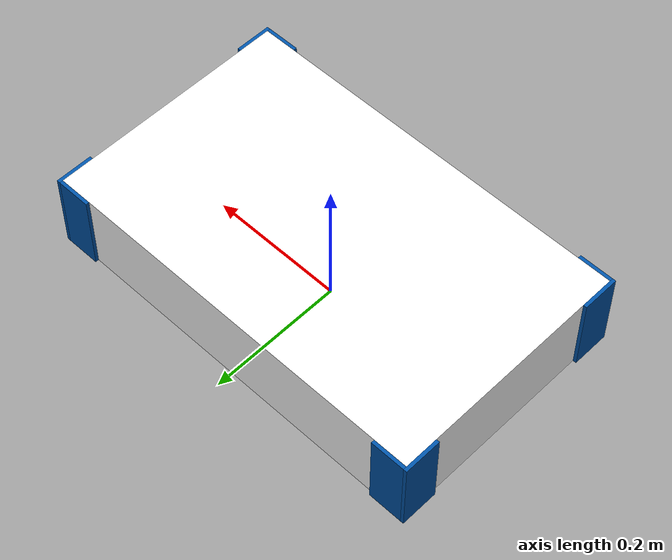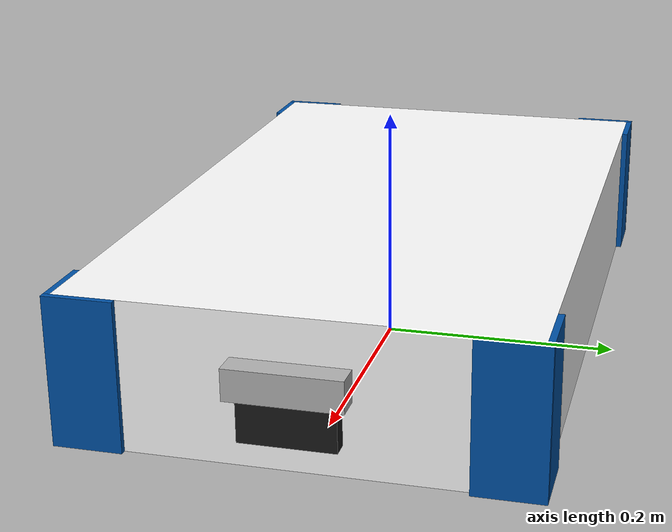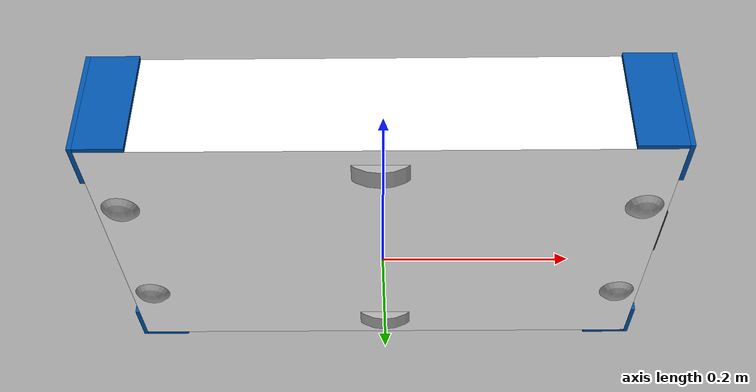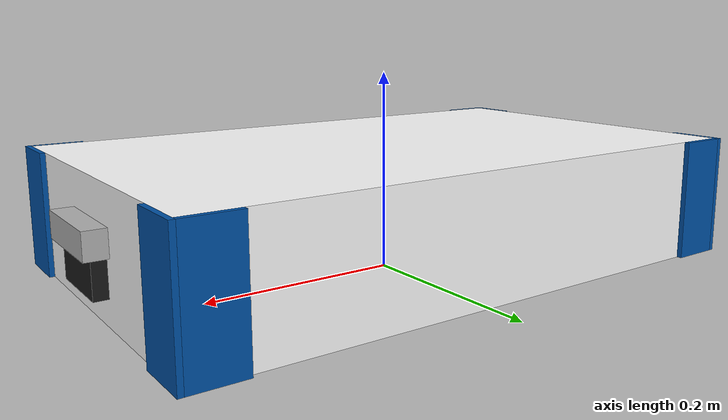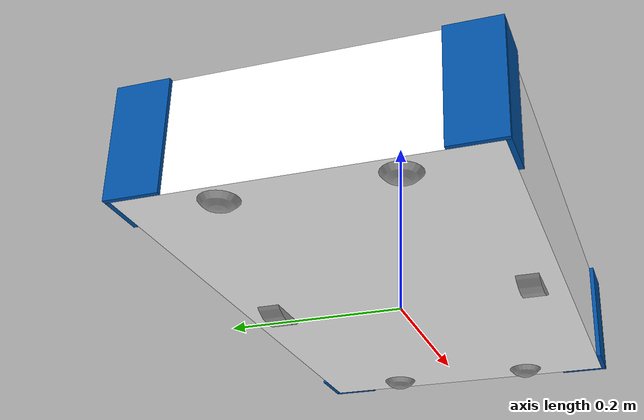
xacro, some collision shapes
<?xml version="1.0"?>
<robot xmlns:xacro="http://www.ros.org/wiki/xacro" name="ad_r1m_realsense">
    <xacro:arg name="robot_namespace" default="" />
    <xacro:property name="chassis_length" value="0.585"/>

    <!-- Build prefix based on namespace -->
    <xacro:property name="robot_namespace" value="$(arg robot_namespace)" />
    <xacro:property name="prefix" value="${ robot_namespace + '/' if robot_namespace else '' }" />

    <!-- Instantiate sim robot model (includes ad_r1m_base + gazebo_ros2_control) -->
    <xacro:include filename="$(find ad_r1m_gazebo)/urdf/ad_r1m_sim.urdf.xacro" />

    <!-- Add realsense camera -->
    <xacro:include filename="$(find ad_r1m_perception_cuvslam)/urdf/_d435i.urdf.xacro"/>
    <xacro:sensor_d435i parent="${prefix}chassis" name="camera">
        <origin xyz="${chassis_length / 2} 0 0" rpy="0 0 0"/>
    </xacro:sensor_d435i>
</robot>

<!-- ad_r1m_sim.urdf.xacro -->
<robot name="ad_r1m_sim" xmlns:xacro="http://www.ros.org/wiki/xacro">
    <xacro:arg name="robot_namespace" default="" />

    <!-- Build prefix based on namespace -->
    <xacro:property name="robot_namespace" value="$(arg robot_namespace)" />
    <xacro:property name="prefix" value="" />
    <xacro:if value="${robot_namespace != ''}">
        <xacro:property name="prefix" value="${robot_namespace}/" />
    </xacro:if>

    <!-- Instantiate base robot model -->
    <xacro:include filename="$(find ad_r1m_description)/urdf/ad_r1m_base.urdf.xacro" />
    <xacro:ad_r1m_base prefix="${prefix}" use_sim="true" />

    <ros2_control name="GZSimSystem" type="system">
        <hardware>
            <plugin>gz_ros2_control/GazeboSimSystem</plugin>
        </hardware>
        <joint name="left_wheel_joint">
            <command_interface name="velocity">
                <param name="min">-18</param>
                <param name="max">18</param>
            </command_interface>
            <state_interface name="velocity"/>
            <state_interface name="position"/>
        </joint>
        <joint name="right_wheel_joint">
            <command_interface name="velocity">
                <param name="min">-18</param>
                <param name="max">18</param>
            </command_interface>
            <state_interface name="velocity"/>
            <state_interface name="position"/>
        </joint>
    </ros2_control>

    <gazebo>
        <plugin filename="gz_ros2_control-system" name="gz_ros2_control::GazeboSimROS2ControlPlugin">
            <parameters>$(find ad_r1m_control)/config/controllers.yaml</parameters>
            <parameters>$(find ad_r1m_gazebo)/config/gaz_ros2_ctl_use_sim.yaml</parameters>
            <robot_param>robot_description</robot_param>
            <robot_param_node>robot_state_publisher</robot_param_node>
            <ros>
                <namespace>$(arg robot_namespace)</namespace>
            </ros>
        </plugin>
    </gazebo>
</robot>

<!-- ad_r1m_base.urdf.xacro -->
<robot xmlns:xacro="http://www.ros.org/wiki/xacro">

<xacro:include filename="_inertial_macros.xacro" />
<xacro:include filename="_lidar.xacro" />
<xacro:include filename="_tof_adtf3175d.xacro" />
<xacro:include filename="_imu_adis16470.xacro" />

<xacro:macro name="ad_r1m_base" params="prefix use_sim:=false">

    <xacro:property name="chassis_length" value="0.59"/>
    <xacro:property name="chassis_width" value="0.36"/>
    <xacro:property name="chassis_height" value="0.12"/>
    <xacro:property name="base_width" value="0.22"/>
    <xacro:property name="wheel_separation" value="0.29"/>
    <xacro:property name="chassis_clearance_ground" value="0.010"/>
    <xacro:property name="chassis_zoff" value="${(chassis_clearance_ground + chassis_height/2)}"/>
    <xacro:property name="chassis_mass" value="1.0"/>

    <xacro:property name="wheel_radius" value="0.05"/>
    <xacro:property name="wheel_width" value="0.025"/>
    <xacro:property name="wheel_mass" value="0.5"/> <!-- SLIP_FIX was 0.05 -->

    <xacro:property name="caster_wheel_radius" value="0.025"/>
    <xacro:property name="caster_wheel_mass" value="0.01"/>
    <xacro:property name="caster_wheel_zoff" value="${caster_wheel_radius}"/>

    <xacro:property name="bumper_thickness" value="0.005"/>
    <xacro:property name="bumper_length" value="0.05"/>
    <xacro:property name="bumper_height" value="${chassis_height}"/>

    <xacro:property name="camera_length" value="0.065"/>
    <xacro:property name="camera_height" value="0.05"/>
    <xacro:property name="camera_offset_above_chassis" value="0.025"/>
    <xacro:property name="camera_overhang" value="0.013"/>

    <material name="white"><color rgba="1.0 1.0 1.0 1.0"/></material>
    <material name="adi_blue"><color rgba="0.0 0.32 0.65 1.0"/></material>
    <material name="gray"><color rgba="0.65 0.65 0.65 1.0"/></material>
    <material name="black"><color rgba="0.1 0.1 0.1 1.0"/></material>

    <!-- BASE LINK -->

    <link name="${prefix}base_link"></link>

    <!-- HARDWARE MODULES -->

    <xacro:imu_adis16470 prefix="${prefix}" parent="${prefix}base_link">
        <origin xyz="0.180 0 ${wheel_radius}" rpy="${pi} 0 ${-pi/2}"/>
    </xacro:imu_adis16470>

    <xacro:tof_adtf3175d prefix="${prefix}" parent="${prefix}base_link" use_sim="${use_sim}">
        <origin xyz="${chassis_length/2 + camera_overhang - camera_length/2} 0 ${chassis_clearance_ground + camera_offset_above_chassis + camera_height/2}" rpy="0 0 0" />
    </xacro:tof_adtf3175d>

    <xacro:lidar prefix="${prefix}" parent="${prefix}base_link">
        <origin xyz="${chassis_length/2 + camera_overhang - camera_length/2} 0 ${chassis_clearance_ground + camera_offset_above_chassis + camera_height/2}" rpy="0 0 0" />
    </xacro:lidar>

    <!-- BASE_FOOTPRINT LINK -->

    <joint name="base_footprint_joint" type="fixed">
        <parent link="${prefix}base_link"/>
        <child link="${prefix}base_footprint"/>
        <origin xyz="0 0 0" rpy="0 0 0"/>
    </joint>

    <link name="${prefix}base_footprint"></link>

    <!-- CHASSIS LINK -->

    <joint name="chassis_joint" type="fixed">
        <parent link="${prefix}base_link"/>
        <child link="${prefix}chassis"/>
        <origin xyz="0 0 ${chassis_zoff}"/>
    </joint>

    <link name="${prefix}chassis">
        <visual>
            <geometry>
                <box size="${chassis_length} ${chassis_width} ${chassis_height}"/>
            </geometry>
            <material name="white"/>
        </visual>
        <collision>
            <geometry>
                <box size="${chassis_length} ${chassis_width} ${chassis_height}"/>
            </geometry>
        </collision>
        <xacro:inertial_box mass="10.0" x="${chassis_length}" y="${chassis_width}" z="${chassis_height}">
            <origin xyz="0 0 0" rpy="0 0 0"/>
        </xacro:inertial_box>
    </link>

    <gazebo reference="${prefix}chassis">
        <material>
            <ambient>1.0 1.0 1.0 1</ambient>
            <diffuse>1.0 1.0 1.0 1</diffuse>
            <specular>1.0 1.0 1.0 1</specular>
        </material>
    </gazebo>

    <!-- CORNER BUMPERS (L-shaped: lateral + front/rear sections) -->
    <xacro:macro name="corner_bumper" params="name x_reflect y_reflect">
        <!-- Lateral section (along Y, on the side) -->
        <joint name="${prefix}${name}_bumper_lat_joint" type="fixed">
            <parent link="${prefix}chassis"/>
            <child link="${prefix}${name}_bumper_lat"/>
	    <origin xyz="${x_reflect*(chassis_length/2 - bumper_length/2)} ${y_reflect*(chassis_width/2 + bumper_thickness/2)} 0" rpy="0 0 0"/>
        </joint>

        <link name="${prefix}${name}_bumper_lat">
            <visual>
                <geometry>
                    <box size="${bumper_length} ${bumper_thickness} ${bumper_height}"/>
                </geometry>
                <material name="adi_blue"/>
            </visual>
        </link>

        <gazebo reference="${prefix}${name}_bumper_lat">
            <material>
                <ambient>0.0 0.0 0.8 1</ambient>
                <diffuse>0.0 0.0 0.8 1</diffuse>
                <specular>0.0 0.0 0.8 1</specular>
            </material>
        </gazebo>

        <!-- Front/rear section (along X, on the front/back) -->
        <joint name="${prefix}${name}_bumper_front_joint" type="fixed">
            <parent link="${prefix}chassis"/>
            <child link="${prefix}${name}_bumper_front"/>
	    <origin xyz="${x_reflect*(chassis_length/2 + bumper_thickness/2)} ${y_reflect*(chassis_width/2 - bumper_length/2 + bumper_thickness/2)} 0" rpy="0 0 0"/>
        </joint>

        <link name="${prefix}${name}_bumper_front">
            <visual>
                <geometry>
                    <box size="${bumper_thickness} ${bumper_length + bumper_thickness} ${bumper_height}"/>
                </geometry>
                <material name="adi_blue"/>
            </visual>
        </link>

        <gazebo reference="${prefix}${name}_bumper_front">
            <material>
                <ambient>0.0 0.0 0.8 1</ambient>
                <diffuse>0.0 0.0 0.8 1</diffuse>
                <specular>0.0 0.0 0.8 1</specular>
            </material>
        </gazebo>
    </xacro:macro>

    <xacro:corner_bumper name="front_left" x_reflect="1" y_reflect="1"/>
    <xacro:corner_bumper name="front_right" x_reflect="1" y_reflect="-1"/>
    <xacro:corner_bumper name="rear_left" x_reflect="-1" y_reflect="1"/>
    <xacro:corner_bumper name="rear_right" x_reflect="-1" y_reflect="-1"/>

    <!-- LEFT WHEEL LINK -->

    <joint name="left_wheel_joint" type="continuous">
        <parent link="${prefix}base_link"/>
        <child link="${prefix}left_wheel"/>
        <origin xyz="0 ${wheel_separation/2} ${wheel_radius}" rpy="-${pi/2} 0 0" />
        <axis xyz="0 0 1"/>
    </joint>

    <link name="${prefix}left_wheel">
        <visual>
            <geometry>
                <cylinder radius="${wheel_radius}" length="${wheel_width}"/>
            </geometry>
            <material name="gray"/>
        </visual>
        <collision>
            <geometry>
                <cylinder radius="${wheel_radius}" length="${wheel_width}"/> <!-- SLIP_FIX was sphere -->
            </geometry>
        </collision>
        <xacro:inertial_cylinder mass="${wheel_mass}" length="${wheel_width}" radius="${wheel_radius}">
            <origin xyz="0 0 0" rpy="0 0 0"/>
        </xacro:inertial_cylinder>
    </link>

    <gazebo reference="${prefix}left_wheel">
        <material>
            <ambient>0.5 0.5 0.5 1</ambient>
            <diffuse>0.5 0.5 0.5 1</diffuse>
            <specular>0.5 0.5 0.5 1</specular>
        </material>
        <collision>
            <surface>
                <friction><ode><mu>1.5</mu><mu2>1.5</mu2></ode></friction>
                <contact><ode><kp>1e6</kp><kd>100</kd><min_depth>0.001</min_depth><max_vel>0.1</max_vel></ode></contact>
            </surface>
        </collision>
    </gazebo>

    <!-- RIGHT WHEEL LINK -->

    <joint name="right_wheel_joint" type="continuous">
        <parent link="${prefix}base_link"/>
        <child link="${prefix}right_wheel"/>
        <origin xyz="0 ${-wheel_separation/2} ${wheel_radius}" rpy="${pi/2} 0 0" />
        <axis xyz="0 0 -1"/>
    </joint>

    <link name="${prefix}right_wheel">
        <visual>
            <geometry>
                <cylinder radius="${wheel_radius}" length="${wheel_width}"/>
            </geometry>
            <material name="gray"/>
        </visual>
        <collision>
            <geometry>
                <cylinder radius="${wheel_radius}" length="${wheel_width}"/> <!-- SLIP_FIX was sphere -->
            </geometry>
        </collision>
        <xacro:inertial_cylinder mass="${wheel_mass}" length="${wheel_width}" radius="${wheel_radius}">
            <origin xyz="0 0 0" rpy="0 0 0"/>
        </xacro:inertial_cylinder>
    </link>

    <gazebo reference="${prefix}right_wheel">
        <material>
            <ambient>0.5 0.5 0.5 1</ambient>
            <diffuse>0.5 0.5 0.5 1</diffuse>
            <specular>0.5 0.5 0.5 1</specular>
        </material>
        <collision>
            <surface>
                <friction><ode><mu>1.5</mu><mu2>1.5</mu2></ode></friction>
                <contact><ode><kp>1e6</kp><kd>100</kd><min_depth>0.001</min_depth><max_vel>0.1</max_vel></ode></contact>
            </surface>
        </collision>
    </gazebo>

    <!-- CASTER WHEEL LINKS -->
    <xacro:macro name="caster_wheel" params="prefix parent x_reflect y_reflect">
        <link name="${prefix}_link">
            <visual>
                <geometry>
                    <sphere radius="${caster_wheel_radius}"/>
                </geometry>
                <material name="gray"/>
            </visual>
            <collision>
                <origin xyz="0 0 0" rpy="0 0 0"/>
                <geometry>
                    <sphere radius="${caster_wheel_radius}"/>
                </geometry>
            </collision>
            <xacro:inertial_sphere mass="${caster_wheel_mass}" radius="${caster_wheel_radius}">
                <origin xyz="0 0 0" rpy="0 0 0"/>
            </xacro:inertial_sphere>
        </link>

        <joint name="${prefix}_joint" type="fixed">
            <parent link="${parent}"/>
            <child link="${prefix}_link"/>
            <origin xyz="${x_reflect*(chassis_length/2-caster_wheel_radius)} ${y_reflect*(base_width/2-caster_wheel_radius)} ${caster_wheel_zoff}" rpy="0 0 0"/>
        </joint>

        <gazebo reference="${prefix}_link">
            <material>
                <ambient>0.5 0.5 0.5 1</ambient>
                <diffuse>0.5 0.5 0.5 1</diffuse>
                <specular>0.5 0.5 0.5 1</specular>
            </material>
            <collision>
                <surface>
                    <friction><ode><mu>0.001</mu><mu2>0.001</mu2></ode></friction>
                    <contact><ode><kp>1e6</kp><kd>100</kd><min_depth>0.001</min_depth><max_vel>0.1</max_vel></ode></contact>
                </surface>
            </collision>
        </gazebo>
    </xacro:macro>

    <xacro:caster_wheel parent="${prefix}base_link" prefix="${prefix}front_left_caster" x_reflect="1" y_reflect="1"/>
    <xacro:caster_wheel parent="${prefix}base_link" prefix="${prefix}front_right_caster" x_reflect="1" y_reflect="-1"/>
    <xacro:caster_wheel parent="${prefix}base_link" prefix="${prefix}rear_left_caster" x_reflect="-1" y_reflect="1"/>
    <xacro:caster_wheel parent="${prefix}base_link" prefix="${prefix}rear_right_caster" x_reflect="-1" y_reflect="-1"/>

</xacro:macro>
</robot>

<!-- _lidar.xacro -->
<robot xmlns:xacro="http://www.ros.org/wiki/xacro" >

<xacro:macro name="lidar" params="prefix parent *origin">

    <joint name="cam1_laser_joint" type="fixed">
        <parent link="${parent}"/>
        <child link="${prefix}cam1_laser"/>
        <xacro:insert_block name="origin" />
    </joint>

    <link name="${prefix}cam1_laser">
        <inertial>
            <origin xyz="0 0 0" rpy="0 0 0"/>
            <mass value="0.125"/>
            <inertia ixx="0.001" ixy="0" ixz="0" iyy="0.001" iyz="0" izz="0.001" />
        </inertial>

        <collision>
            <origin xyz="0 0 0" rpy="0 0 0"/>
            <geometry>
                <box size="0.02 0.065 0.07"/>
            </geometry>
        </collision>

        <visual>
            <origin xyz="0 0 0" rpy="0 0 0"/>
            <geometry>
                <box size="0.02 0.065 0.07"/>
            </geometry>
            <material name="black"/>
        </visual>
    </link>

    <gazebo reference="${prefix}cam1_laser">
        <material>Gazebo/Black</material>

        <sensor name="laser" type="ray">
            <pose> 0 0 0 0 0 0 </pose>
            <visualize>false</visualize>
            <update_rate>10</update_rate>
            <ray>
                <scan>
                    <horizontal>
                        <samples>75</samples>
                        <min_angle>-0.654166</min_angle>
                        <max_angle>0.654166</max_angle>
                    </horizontal>
                </scan>
                <range>
                    <min>0.4</min>
                    <max>5</max>
                </range>
            </ray>
            <plugin name="laser_controller" filename="libgazebo_ros_ray_sensor.so">
                <ros>
                    <remapping>~/out:=/scan</remapping>
                </ros>
                <output_type>sensor_msgs/LaserScan</output_type>
                <frame_name>cam1_laser</frame_name>
            </plugin>
        </sensor>
    </gazebo>

</xacro:macro>
</robot>

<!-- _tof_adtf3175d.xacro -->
<robot xmlns:xacro="http://www.ros.org/wiki/xacro">

<xacro:macro name="tof_adtf3175d" params="prefix parent use_sim:=false *origin">

    <!-- Optical frame rotation differs: real driver flips image internally -->
    <xacro:property name="optical_sign" value="${-1 if use_sim else 1}"/>

    <joint name="cam1_adtf31xx_joint" type="fixed">
        <parent link="${parent}"/>
        <child link="${prefix}cam1_adtf31xx"/>
        <xacro:insert_block name="origin" />
    </joint>

    <link name="${prefix}cam1_adtf31xx">
        <inertial>
            <origin xyz="0 0 0" rpy="0 0 0"/>
            <mass value="0.125"/>
            <inertia ixx="0.001" ixy="0" ixz="0" iyy="0.001" iyz="0" izz="0.001" />
        </inertial>

        <collision>
            <origin xyz="0 0 0" rpy="0 0 0"/>
            <geometry>
                <box size="0.065 0.075 0.05"/>
            </geometry>
        </collision>

        <visual>
            <origin xyz="0 0 0" rpy="0 0 0"/>
            <geometry>
                <box size="0.065 0.075 0.05"/>
            </geometry>
            <material name="black"/>
        </visual>
    </link>

    <joint name="cam1_adtf31xx_optical_joint" type="fixed">
        <parent link="${prefix}cam1_adtf31xx"/>
        <child link="${prefix}cam1_adtf31xx_optical"/>
        <origin xyz="0 0 0" rpy="${optical_sign * pi/2} 0 ${optical_sign * pi/2}"/>
    </joint>
    <link name="${prefix}cam1_adtf31xx_optical"></link>

    <joint name="cam1_scan_joint" type="fixed">
        <parent link="${prefix}cam1_adtf31xx"/>
        <child link="${prefix}cam1_scan"/>
        <origin xyz="0 0 0" rpy="${pi} 0 0"/>
    </joint>
    <link name="${prefix}cam1_scan"></link>

    <gazebo reference="${prefix}cam1_adtf31xx">
        <material>
            <ambient>0.1 0.1 0.1 1</ambient>
            <diffuse>0.1 0.1 0.1 1</diffuse>
            <specular>0.1 0.1 0.1 1</specular>
        </material>

        <!-- 75deg FOV, 512x512, 0.3-5.0m range -->
        <sensor name="cam1_depth" type="rgbd_camera">
            <pose>0 0 0 0 0 0</pose>
            <visualize>true</visualize>
            <update_rate>30</update_rate>
            <topic>cam1</topic>
            <gz_frame_id>${prefix}cam1_adtf31xx</gz_frame_id>
            <camera>
                <horizontal_fov>1.309</horizontal_fov>
                <image>
                    <width>512</width>
                    <height>512</height>
                    <format>R8G8B8</format>
                </image>
                <clip>
                    <near>0.3</near>
                    <far>5.0</far>
                </clip>
                <noise>
                    <type>gaussian</type>
                    <mean>0.0</mean>
                    <stddev>0.005</stddev>
                </noise>
            </camera>
        </sensor>
    </gazebo>

</xacro:macro>
</robot>

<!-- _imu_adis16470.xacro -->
<robot xmlns:xacro="http://www.ros.org/wiki/xacro" >

<xacro:macro name="imu_adis16470" params="prefix parent *origin">

    <joint name="imu_joint" type="fixed">
        <parent link="${parent}"/>
        <child link="${prefix}imu"/>
        <xacro:insert_block name="origin" />
    </joint>

    <link name="${prefix}imu">
        <inertial>
            <origin xyz="0 0 0" rpy="0 0 0"/>
            <mass value="0.001"/>
            <inertia ixx="0.00001" ixy="0" ixz="0" iyy="0.00001" iyz="0" izz="0.00001" />
        </inertial>

        <collision>
            <origin xyz="0 0 0" rpy="0 0 0"/>
            <geometry>
                <box size="0.015 0.01 0.01"/>
            </geometry>
        </collision>

        <visual>
            <origin xyz="0 0 0" rpy="0 0 0"/>
            <geometry>
                <box size="0.015 0.01 0.01"/>
            </geometry>
            <material name="white">
                <color rgba="1 1 1 1"/>
            </material>
        </visual>
    </link>

    <gazebo reference="${prefix}imu">
        <sensor name="imu_sensor" type="imu">
        <always_on>true</always_on>
        <update_rate>100</update_rate>
        <visualize>true</visualize>
        <topic>imu</topic>
        <gz_frame_id>${prefix}imu</gz_frame_id>
        <imu>
            <angular_velocity>
                <x><noise type="gaussian">
                    <mean>0.0</mean>
                    <stddev>2e-4</stddev>
                    <bias_mean>0.0000075</bias_mean>
                    <bias_stddev>0.0000008</bias_stddev>
                </noise></x>
                <y><noise type="gaussian">
                    <mean>0.0</mean>
                    <stddev>2e-4</stddev>
                    <bias_mean>0.0000075</bias_mean>
                    <bias_stddev>0.0000008</bias_stddev>
                </noise></y>
                <z><noise type="gaussian">
                    <mean>0.0</mean>
                    <stddev>2e-4</stddev>
                    <bias_mean>0.0000075</bias_mean>
                    <bias_stddev>0.0000008</bias_stddev>
                </noise></z>
            </angular_velocity>
            <linear_acceleration>
                <x><noise type="gaussian">
                    <mean>0.0</mean>
                    <stddev>1.7e-2</stddev>
                    <bias_mean>0.1</bias_mean>
                    <bias_stddev>0.001</bias_stddev>
                </noise></x>
                <y><noise type="gaussian">
                    <mean>0.0</mean>
                    <stddev>1.7e-2</stddev>
                    <bias_mean>0.1</bias_mean>
                    <bias_stddev>0.001</bias_stddev>
                </noise></y>
                <z><noise type="gaussian">
                    <mean>-9.81</mean>    <!-- Offset by gravitational acceleration -->
                    <stddev>1.7e-2</stddev>
                    <bias_mean>0.0</bias_mean>  <!-- Reduced bias -->
                    <bias_stddev>0.0</bias_stddev>  <!-- Removed bias variation -->
                </noise></z>
            </linear_acceleration>
        </imu>
        </sensor>
    </gazebo>

</xacro:macro>
</robot>

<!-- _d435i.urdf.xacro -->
<robot name="sensor_d435i" xmlns:xacro="http://www.ros.org/wiki/xacro">

  <!-- Includes -->
  <xacro:include filename="$(find ad_r1m_perception_cuvslam)/urdf/_d435.urdf.xacro"/>
  <xacro:include filename="$(find ad_r1m_perception_cuvslam)/urdf/_d435i_imu_modules.urdf.xacro"/>
  <xacro:include filename="$(find ad_r1m_perception_cuvslam)/urdf/_d435i_imu.gazebo.xacro"/>

  <xacro:macro name="sensor_d435i" params="parent *origin name:=camera use_nominal_extrinsics:=true">

    <!-- D435 camera (with RGB, depth, IR sensors) -->
    <xacro:sensor_d435 parent="${parent}" name="${name}">
      <xacro:insert_block name="origin"/>
    </xacro:sensor_d435>

    <!-- IMU frames -->
    <xacro:d435i_imu_modules name="${name}" use_nominal_extrinsics="${use_nominal_extrinsics}"/>

    <!-- IMU Gazebo plugin -->
    <xacro:gazebo_d435i_imu
      camera_name="${name}"
      reference_link="${name}_link"
      accel_frame="${name}_accel_optical_frame"
      gyro_frame="${name}_gyro_optical_frame"/>
  </xacro:macro>
</robot>

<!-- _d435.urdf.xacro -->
<robot name="sensor_d435" xmlns:xacro="http://ros.org/wiki/xacro">
  <!--File includes-->
  <xacro:include filename="$(find ad_r1m_perception_cuvslam)/urdf/_d435.gazebo.xacro"/>

  <xacro:macro name="sensor_d435" params="name:=camera topics_ns:=camera parent *origin use_mesh:=true">
    <xacro:property name="M_PI" value="3.1415926535897931" />

    <!-- The following values are approximate, and the camera node
     publishing TF values with actual calibrated camera extrinsic values -->
    <xacro:property name="d435_cam_depth_to_left_ir_offset" value="0"/>
    <xacro:property name="d435_cam_depth_to_right_ir_offset" value="-0.050"/>
    <xacro:property name="d435_cam_depth_to_color_offset" value="0.015"/>

    <!-- The following values model the aluminum peripherial case for the
  	D435 camera, with the camera joint represented by the actual
  	peripherial camera tripod mount -->
    <xacro:property name="d435_cam_width" value="0.090"/>
    <xacro:property name="d435_cam_height" value="0.025"/>
    <xacro:property name="d435_cam_depth" value="0.02505"/>
    <xacro:property name="d435_cam_mount_from_center_offset" value="0.0149"/>
    <!-- glass cover is 0.1 mm inwards from front aluminium plate -->
    <xacro:property name="d435_glass_to_front" value="0.1e-3"/>
    <!-- see datasheet Revision 007, Fig. 4-4 page 65 -->
    <xacro:property name="d435_zero_depth_to_glass" value="4.2e-3"/>
    <!-- convenience precomputation to avoid clutter-->
    <xacro:property name="d435_mesh_x_offset" value="${d435_cam_mount_from_center_offset-d435_glass_to_front-d435_zero_depth_to_glass}"/>

    <!-- The following offset is relative the the physical D435 camera peripherial
  	camera tripod mount -->
    <xacro:property name="d435_cam_depth_px" value="${d435_cam_mount_from_center_offset}"/>
    <xacro:property name="d435_cam_depth_py" value="0.0175"/>
    <xacro:property name="d435_cam_depth_pz" value="${d435_cam_height/2}"/>

    <material name="${name}_aluminum">
	  <color rgba="0.5 0.5 0.5 1"/>
    </material>

    <!-- camera body, with origin at bottom screw mount -->
    <joint name="${name}_joint" type="fixed">
      <xacro:insert_block name="origin" />
      <parent link="${parent}"/>
      <child link="${name}_bottom_screw_frame" />
    </joint>
    <link name="${name}_bottom_screw_frame"/>

    <joint name="${name}_link_joint" type="fixed">
      <origin xyz="${d435_mesh_x_offset} ${d435_cam_depth_py} ${d435_cam_depth_pz}" rpy="0 0 0"/>
      <parent link="${name}_bottom_screw_frame"/>
      <child link="${name}_link" />
    </joint>

    <link name="${name}_link">
      <visual>
      <xacro:if value="${use_mesh}">
      <origin xyz="${d435_zero_depth_to_glass + d435_glass_to_front} ${-d435_cam_depth_py} 0" rpy="${M_PI/2} 0 ${M_PI/2}"/>
        <geometry>
          <mesh filename="$(find ad_r1m_perception_cuvslam)/meshes/d435.dae" scale="1 1 1"/>
        </geometry>
        </xacro:if>
         <xacro:unless value="${use_mesh}">
          <origin xyz="0 ${-d435_cam_depth_py} 0" rpy="0 0 0"/>
          <geometry>
            <box size="${d435_cam_depth} ${d435_cam_width} ${d435_cam_height}"/>
          </geometry>
          <material name="aluminum"/>
        </xacro:unless>
      </visual>
      <collision>
        <origin xyz="0 ${-d435_cam_depth_py} 0" rpy="0 0 0"/>
        <geometry>
        <box size="${d435_cam_depth} ${d435_cam_width} ${d435_cam_height}"/>
        </geometry>
      </collision>
      <inertial>
        <!-- The following are not reliable values, and should not be used for modeling -->
        <mass value="0.564" />
        <origin xyz="0 0 0" />
        <inertia ixx="0.003881243" ixy="0.0" ixz="0.0" iyy="0.000498940" iyz="0.0" izz="0.003879257" />
      </inertial>
    </link>

    <!-- camera depth joints and links -->
    <joint name="${name}_depth_joint" type="fixed">
      <origin xyz="0 0 0" rpy="0 0 0"/>
      <parent link="${name}_link"/>
      <child link="${name}_depth_frame" />
    </joint>
    <link name="${name}_depth_frame"/>

    <joint name="${name}_depth_optical_joint" type="fixed">
      <origin xyz="0 0 0" rpy="${-M_PI/2} 0 ${-M_PI/2}" />
      <parent link="${name}_depth_frame" />
      <child link="${name}_depth_optical_frame" />
    </joint>
    <link name="${name}_depth_optical_frame"/>

    <!-- camera left IR joints and links -->

    <!-- NEW frames according to real realsense tf tree for the infra1 camera frame-->
    <joint name="${name}_infra1_joint" type="fixed">
        <origin xyz="0 ${d435_cam_depth_to_left_ir_offset} 0" rpy="0 0 0" />
        <parent link="${name}_link" />
      <child link="${name}_infra1_frame" />
    </joint>
    <link name="${name}_infra1_frame"/>

    <joint name="${name}_left_ir_joint" type="fixed">
        <origin xyz="0 0 0" rpy="0 0 0" />
        <parent link="${name}_link" />
      <child link="${name}_aligned_depth_to_infra1_frame" />
    </joint>
    <link name="${name}_aligned_depth_to_infra1_frame"/>

    <joint name="${name}_left_ir_optical_joint" type="fixed">
        <origin xyz="0 ${d435_cam_depth_to_left_ir_offset} 0" rpy="${-M_PI/2} 0 ${-M_PI/2}" />
        <parent link="${name}_aligned_depth_to_infra1_frame" />
      <child link="${name}_infra1_optical_frame" />
    </joint>
    <link name="${name}_infra1_optical_frame"/>

    <!-- camera right IR joints and links -->
    <joint name="${name}_right_ir_joint" type="fixed">
        <origin xyz="0 ${d435_cam_depth_to_right_ir_offset} 0" rpy="0 0 0" />
        <parent link="${name}_link" />
      <child link="${name}_infra2_frame" />
    </joint>
    <link name="${name}_infra2_frame"/>

    <joint name="${name}_right_ir_optical_joint" type="fixed">
      <origin xyz="0 0 0" rpy="${-M_PI/2} 0 ${-M_PI/2}" />
      <parent link="${name}_infra2_frame" />
      <child link="${name}_infra2_optical_frame" />
    </joint>
    <link name="${name}_infra2_optical_frame"/>

    <!-- camera color joints and links -->
    <joint name="${name}_color_joint" type="fixed">
      <origin xyz="0 ${d435_cam_depth_to_color_offset} 0" rpy="0 0 0" />
      <parent link="${name}_link" />
      <child link="${name}_color_frame" />
    </joint>
    <link name="${name}_color_frame"/>

    <joint name="${name}_color_optical_joint" type="fixed">
      <origin xyz="0 0 0" rpy="${-M_PI/2} 0 ${-M_PI/2}" />
      <parent link="${name}_color_frame" />
      <child link="${name}_color_optical_frame" />
    </joint>
    <link name="${name}_color_optical_frame"/>

    <!-- Realsense Gazebo Plugin -->
    <xacro:gazebo_d435 camera_name="${name}"
      reference_link="${name}_link"
      topics_ns="${topics_ns}"
      depth_optical_frame="${name}_depth_optical_frame"
      color_optical_frame="${name}_color_optical_frame"
      depth_frame="${name}_depth_frame"
      color_frame="${name}_color_frame"
      infrared1_optical_frame="${name}_infra1_optical_frame"
      infrared2_optical_frame="${name}_infra2_optical_frame"
      infrared1_frame="${name}_infra1_frame"
      infrared2_frame="${name}_infra2_frame"
      left_ir_offset="${d435_cam_depth_to_left_ir_offset}"
      right_ir_offset="${d435_cam_depth_to_right_ir_offset}"
      use_mesh="${use_mesh}"/>

  </xacro:macro>
</robot>

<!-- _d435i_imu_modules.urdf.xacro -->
<robot name="d435i_imu_modules" xmlns:xacro="http://www.ros.org/wiki/xacro">
  <xacro:macro name="d435i_imu_modules" params="name use_nominal_extrinsics">
    <xacro:property name="M_PI" value="${pi}" />

    <xacro:if value="${use_nominal_extrinsics}">
      <link name="${name}_accel_frame" />
      <link name="${name}_accel_optical_frame" />
      <link name="${name}_gyro_frame" />
      <link name="${name}_gyro_optical_frame" />

      <joint name="${name}_accel_joint" type="fixed">
        <origin xyz = "-0.01174 -0.00552 0.0051" rpy = "0 0 0" />
        <parent link="${name}_link" />
        <child link="${name}_accel_frame" />
      </joint>

      <joint name="${name}_accel_optical_joint" type="fixed">
        <origin xyz = "0 0 0" rpy = "${-M_PI/2} 0 ${-M_PI/2}" />
        <parent link="${name}_accel_frame" />
        <child link="${name}_accel_optical_frame" />
      </joint>

      <joint name="${name}_gyro_joint" type="fixed">
        <origin xyz = "-0.01174 -0.00552 0.0051" rpy = "0 0 0" />
        <parent link="${name}_link" />
        <child link="${name}_gyro_frame" />
      </joint>

      <joint name="${name}_gyro_optical_joint" type="fixed">
        <origin xyz = "0 0 0" rpy = "${-M_PI/2} 0 ${-M_PI/2}" />
        <parent link="${name}_gyro_frame" />
        <child link="${name}_gyro_optical_frame" />
      </joint>
    </xacro:if>

  </xacro:macro>
</robot>
